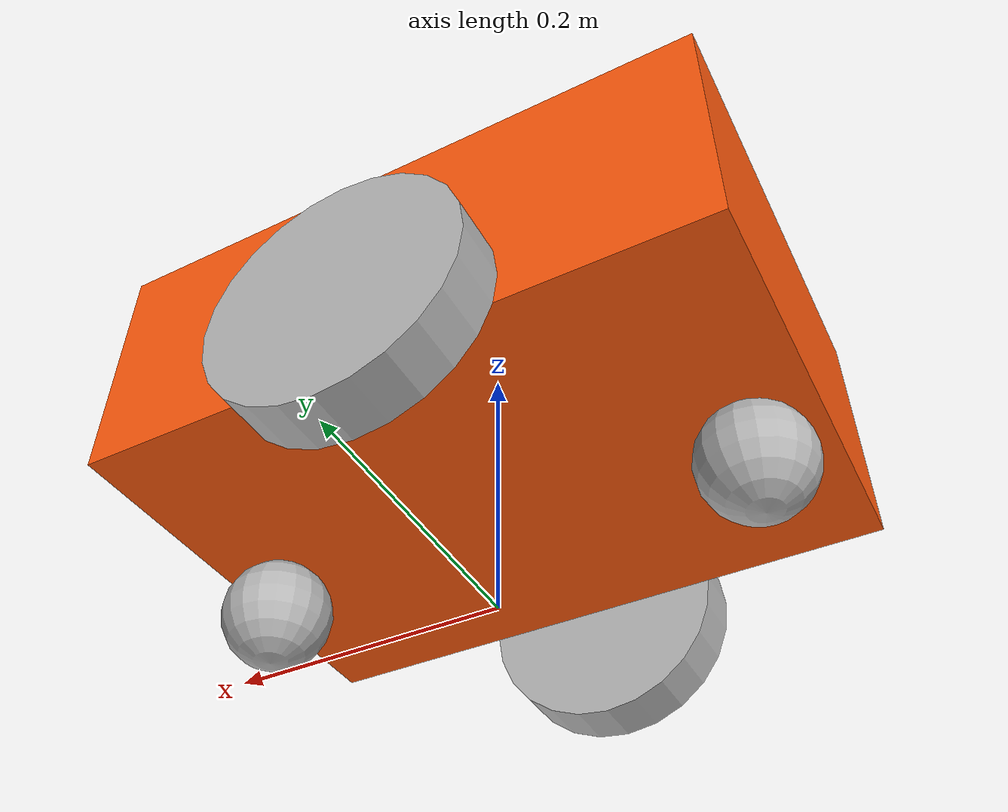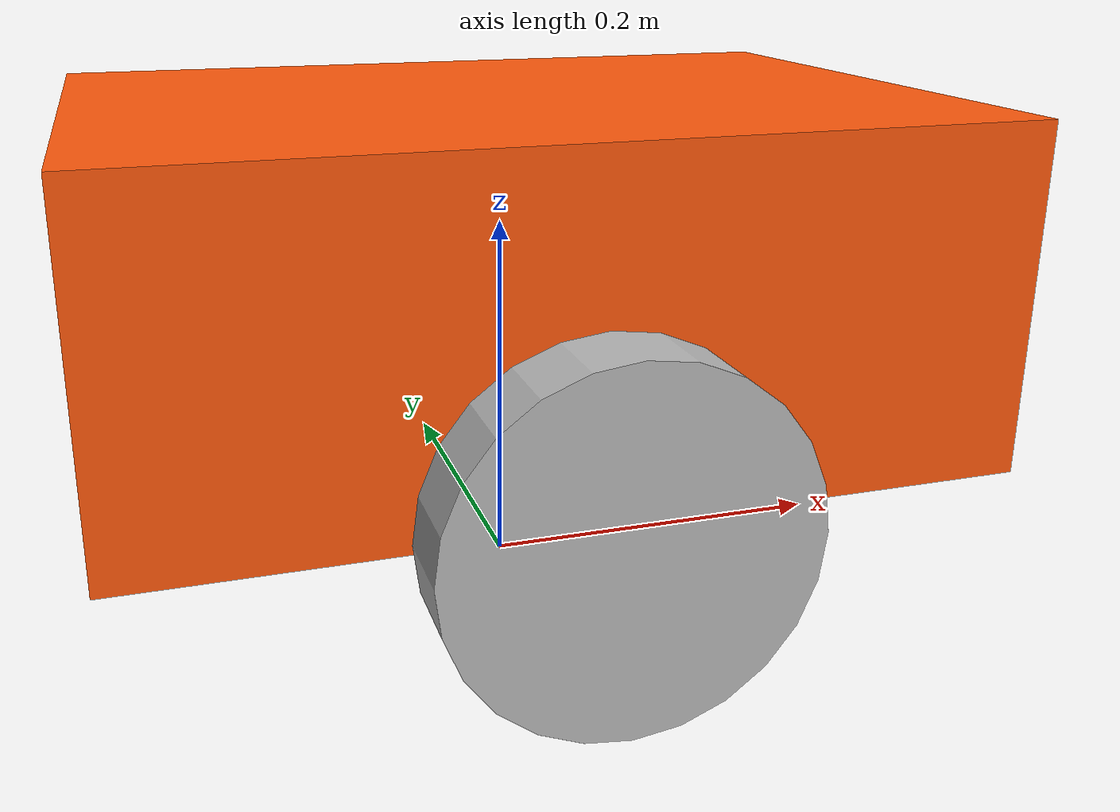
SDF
<?xml version="1.0"?>
<sdf version="1.9"><model name="autonomy_bot"><pose>0 0 0.18 0 0 0</pose>
<link name="base_link"><inertial><mass>5</mass><inertia><ixx>0.08</ixx><iyy>0.08</iyy><izz>0.10</izz></inertia></inertial><collision name="c"><geometry><box><size>0.45 0.32 0.18</size></box></geometry></collision><visual name="v"><geometry><box><size>0.45 0.32 0.18</size></box></geometry><material><ambient>1 0.35 0.05 1</ambient><diffuse>1 0.35 0.05 1</diffuse></material></visual></link>
<link name="left_wheel"><pose>0 0.19 -0.08 1.5708 0 0</pose><inertial><mass>0.2</mass><inertia><ixx>0.00043</ixx><iyy>0.00043</iyy><izz>0.00081</izz></inertia></inertial><collision name="c"><geometry><cylinder><radius>0.09</radius><length>0.04</length></cylinder></geometry></collision><visual name="v"><geometry><cylinder><radius>0.09</radius><length>0.04</length></cylinder></geometry></visual></link>
<link name="right_wheel"><pose>0 -0.19 -0.08 1.5708 0 0</pose><inertial><mass>0.2</mass><inertia><ixx>0.00043</ixx><iyy>0.00043</iyy><izz>0.00081</izz></inertia></inertial><collision name="c"><geometry><cylinder><radius>0.09</radius><length>0.04</length></cylinder></geometry></collision><visual name="v"><geometry><cylinder><radius>0.09</radius><length>0.04</length></cylinder></geometry></visual></link>
<joint name="left_wheel_joint" type="revolute"><parent>base_link</parent><child>left_wheel</child><axis><xyz expressed_in="__model__">0 1 0</xyz></axis></joint>
<joint name="right_wheel_joint" type="revolute"><parent>base_link</parent><child>right_wheel</child><axis><xyz expressed_in="__model__">0 1 0</xyz></axis></joint>
<link name="front_support"><pose>0.18 0 -0.13 0 0 0</pose><inertial><mass>0.05</mass><inertia><ixx>0.000032</ixx><iyy>0.000032</iyy><izz>0.000032</izz></inertia></inertial><collision name="c"><geometry><sphere><radius>0.04</radius></sphere></geometry><surface><friction><ode><mu>0</mu><mu2>0</mu2></ode></friction></surface></collision><visual name="v"><geometry><sphere><radius>0.04</radius></sphere></geometry></visual></link>
<joint name="front_support_joint" type="fixed"><parent>base_link</parent><child>front_support</child></joint>
<link name="rear_support"><pose>-0.18 0 -0.13 0 0 0</pose><inertial><mass>0.05</mass><inertia><ixx>0.000032</ixx><iyy>0.000032</iyy><izz>0.000032</izz></inertia></inertial><collision name="c"><geometry><sphere><radius>0.04</radius></sphere></geometry><surface><friction><ode><mu>0</mu><mu2>0</mu2></ode></friction></surface></collision><visual name="v"><geometry><sphere><radius>0.04</radius></sphere></geometry></visual></link>
<joint name="rear_support_joint" type="fixed"><parent>base_link</parent><child>rear_support</child></joint>
<link name="lidar"><pose>0.12 0 0.15 0 0 0</pose><sensor name="lidar" type="gpu_lidar"><topic>scan</topic><update_rate>10</update_rate><ray><scan><horizontal><samples>360</samples><resolution>1</resolution><min_angle>-3.14159</min_angle><max_angle>3.14159</max_angle></horizontal></scan><range><min>0.12</min><max>10</max><resolution>0.01</resolution></range></ray><always_on>true</always_on></sensor></link>
<joint name="lidar_joint" type="fixed"><parent>base_link</parent><child>lidar</child></joint>
<plugin filename="gz-sim-diff-drive-system" name="gz::sim::systems::DiffDrive"><left_joint>left_wheel_joint</left_joint><right_joint>right_wheel_joint</right_joint><wheel_separation>0.38</wheel_separation><wheel_radius>0.09</wheel_radius><topic>cmd_vel</topic><odom_topic>/wheel_odom</odom_topic><frame_id>odom</frame_id><child_frame_id>base_link</child_frame_id></plugin>
<plugin filename="gz-sim-odometry-publisher-system" name="gz::sim::systems::OdometryPublisher"><odom_topic>/ground_truth</odom_topic><odom_frame>odom</odom_frame><robot_base_frame>base_link</robot_base_frame><dimensions>2</dimensions><odom_publish_frequency>50</odom_publish_frequency></plugin>
</model></sdf>
